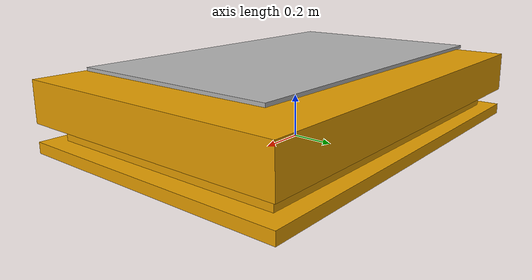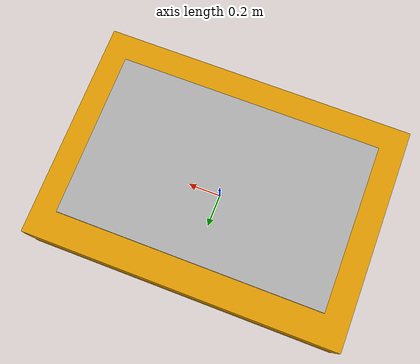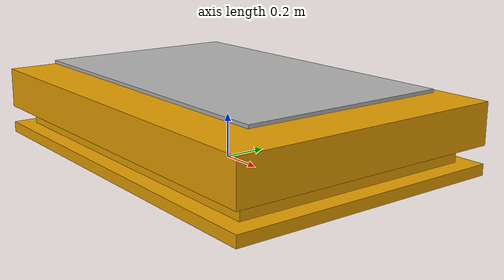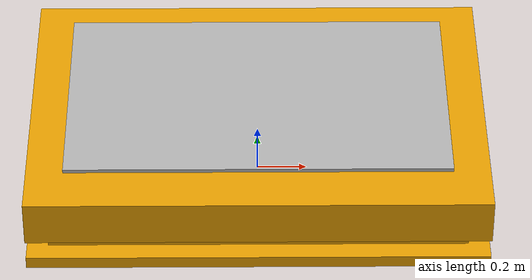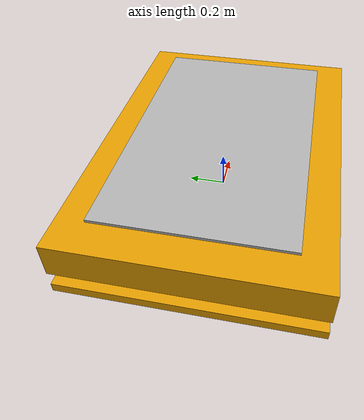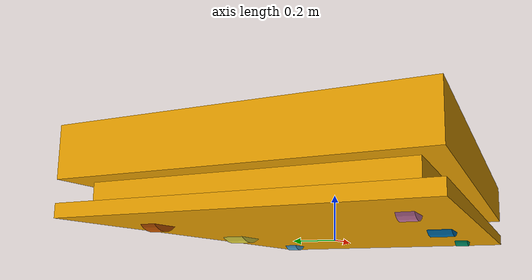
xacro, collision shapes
<?xml version="1.0"?>
<robot xmlns:xacro="http://www.ros.org/wiki/xacro" name="OTTO1500">

  <xacro:property name="base_link_width" value="1.29" />
  <xacro:property name="base_link_length" value="1.83" />
  <xacro:property name="base_link_height" value="0.32" />
  <xacro:property name="base_link_box_height" value=".391179" />

  <xacro:property name="wheel_axis_front" value="0.601175" />
  <xacro:property name="wheel_axis_rear" value="-0.601175" />
  <xacro:property name="wheel_track" value="0.475812" />

  <xacro:property name="wheel_front_rear_radius" value="0.09" />
  <xacro:property name="wheel_front_rear_length" value="0.061434" />
  <xacro:property name="wheel_center_radius" value="0.147" />
  <xacro:property name="wheel_center_length" value="0.1" />

  <xacro:property name="basic_platform_width" value="0.963" />
  <xacro:property name="basic_platform_length" value="1.53" />
  <xacro:property name="basic_platform_height" value="0.015" />
  <xacro:property name="basic_platform_offset" value="0.376" />
  <xacro:property name="basic_platform_collider_offset" value="0.005" />

  <xacro:property name="camera_height" value="0.22" />
  <xacro:property name="camera_center_offset" value="0.51" />

  <xacro:property name="lidar_height" value="0.1" />

  <link name="base_link">
    <inertial>
      <origin xyz="0. 0. 0." />
      <mass value="597" />
      <inertia ixx="88.0222" ixy="0." ixz="0." iyy="174.014" iyz="0." izz="249.778"/>
    </inertial>
    <visual>
      <origin rpy="0. 0. ${pi/2}" xyz="0. 0. 0."/>
      <geometry>
        <mesh filename="../meshes/OTTO1500_bodylink.stl" scale="1.0 1.0 1.0" />
      </geometry>
    </visual>
    <!-- bottom collider box -->
    <collision>
      <origin rpy="0. 0. ${pi/2}" xyz="0. 0. 0.049"/>
      <geometry>
        <box size="${base_link_width} ${base_link_length} 0.05" />
      </geometry>
    </collision>
    <!-- center collider box -->
    <collision>
      <origin rpy="0. 0. ${pi/2}" xyz="0. 0. 0.114"/>
      <geometry>
        <box size="1.135 1.663 0.079" />
      </geometry>
    </collision>
    <!-- top collider box -->
    <collision>
      <origin rpy="0. 0. ${pi/2}" xyz="0. 0. 0.248"/>
      <geometry>
        <box size="${base_link_width} ${base_link_length} 0.187" />
      </geometry>
    </collision>
  </link>

  <!-- Wheel front left -->
  <link name="wheel_FL">
    <inertial>
      <origin xyz="0. 0. 0." />
      <mass value="5" />
      <inertia ixx="0.0116976" ixy="0." ixz="0." iyy="0.02025" iyz="0." izz="0.0116976"/>
    </inertial>
    <visual>
      <origin rpy="0. 0. ${pi/2}" xyz="0. 0. ${-wheel_front_rear_radius}"/>
      <geometry>
        <mesh filename="../meshes/OTTO1500_wheel_front_rear.stl" scale="1.0 1.0 1.0" />
      </geometry>
    </visual>
    <collision>
      <origin rpy="${pi/2} ${pi/2} 0." xyz="0. 0. 0."/>
      <geometry>
        <cylinder radius="${wheel_front_rear_radius}" length="${wheel_front_rear_length}"/>
      </geometry>
    </collision>
  </link>
  <joint name="wheel_FL_joint" type="continuous">
    <parent link="base_link" />
    <child link="wheel_FL" />
    <axis xyz="0. 1. 0." />
    <origin rpy="0. 0. 0." xyz="${wheel_axis_front} ${wheel_track} ${wheel_front_rear_radius}" />
  </joint>

  <link name="wheel_FR">
    <inertial>
      <origin xyz="0. 0. 0." />
      <mass value="5" />
      <inertia ixx="0.0116976" ixy="0." ixz="0." iyy="0.02025" iyz="0." izz="0.0116976"/>
    </inertial>
    <visual>
      <origin rpy="0. 0. ${pi/2}" xyz="0. 0. ${-wheel_front_rear_radius}"/>
      <geometry>
        <mesh filename="../meshes/OTTO1500_wheel_front_rear.stl" scale="1.0 1.0 1.0" />
      </geometry>
    </visual>
    <collision>
      <origin rpy="${pi/2} ${pi/2} 0." xyz="0. 0. 0."/>
      <geometry>
        <cylinder radius="${wheel_front_rear_radius}" length="${wheel_front_rear_length}"/>
      </geometry>
    </collision>
  </link>
  <joint name="wheel_FR_joint" type="continuous">
    <parent link="base_link" />
    <child link="wheel_FR" />
    <axis xyz="0. 1. 0." />
    <origin rpy="0. 0. 0." xyz="${wheel_axis_front} ${-wheel_track} ${wheel_front_rear_radius}" />
  </joint>

  <link name="wheel_CL">
    <inertial>
      <origin xyz="0. 0. 0." />
      <mass value="5" />
      <inertia ixx="0.0311779" ixy="0." ixz="0." iyy="0.0540225" iyz="0." izz="0.0311779"/>
    </inertial>
    <visual>
      <origin rpy="0. 0. ${pi/2}" xyz="0. 0. ${-wheel_center_radius}"/>
      <geometry>
        <mesh filename="../meshes/OTTO1500_wheel_center.stl" scale="1.0 1.0 1.0" />
      </geometry>
    </visual>
    <collision>
      <origin rpy="${pi/2} ${pi/2} 0." xyz="0. 0. 0."/>
      <geometry>
        <cylinder radius="${wheel_center_radius}" length="${wheel_center_length}"/>
      </geometry>
    </collision>
  </link>
  <joint name="wheel_CL_joint" type="continuous">
    <parent link="base_link" />
    <child link="wheel_CL" />
    <axis xyz="0. 1. 0." />
    <origin rpy="0. 0. 0." xyz="0. ${wheel_track} ${wheel_center_radius}" />
  </joint>

  <link name="wheel_CR">
    <inertial>
      <origin xyz="0. 0. 0." />
      <mass value="5" />
      <inertia ixx="0.0311779" ixy="0." ixz="0." iyy="0.0540225" iyz="0." izz="0.0311779"/>
    </inertial>
    <visual>
      <origin rpy="0. 0. ${pi/2}" xyz="0. 0. ${-wheel_center_radius}"/>
      <geometry>
        <mesh filename="../meshes/OTTO1500_wheel_center.stl" scale="1.0 1.0 1.0" />
      </geometry>
    </visual>
    <collision>
      <origin rpy="${pi/2} ${pi/2} 0." xyz="0. 0. 0."/>
      <geometry>
        <cylinder radius="${wheel_center_radius}" length="${wheel_center_length}"/>
      </geometry>
    </collision>
  </link>
  <joint name="wheel_CR_joint" type="continuous">
    <parent link="base_link" />
    <child link="wheel_CR" />
    <axis xyz="0. 1. 0." />
    <origin rpy="0. 0. 0." xyz="0. ${-wheel_track} ${wheel_center_radius}" />
  </joint>

  <link name="wheel_RL">
    <inertial>
      <origin xyz="0. 0. 0." />
      <mass value="5" />
      <inertia ixx="0.0116976" ixy="0." ixz="0." iyy="0.02025" iyz="0." izz="0.0116976"/>
    </inertial>
    <visual>
      <origin rpy="0. 0. ${pi/2}" xyz="0. 0. ${-wheel_front_rear_radius}"/>
      <geometry>
        <mesh filename="../meshes/OTTO1500_wheel_front_rear.stl" scale="1.0 1.0 1.0" />
      </geometry>
    </visual>
    <collision>
      <origin rpy="${pi/2} ${pi/2} 0." xyz="0. 0. 0."/>
      <geometry>
        <cylinder radius="${wheel_front_rear_radius}" length="${wheel_front_rear_length}"/>
      </geometry>
    </collision>
  </link>
  <joint name="wheel_RL_joint" type="continuous">
    <parent link="base_link" />
    <child link="wheel_RL" />
    <axis xyz="0. 1. 0." />
    <origin rpy="0. 0. 0." xyz="${wheel_axis_rear} ${wheel_track} ${wheel_front_rear_radius}" />
  </joint>

  <link name="wheel_RR">
    <inertial>
      <origin xyz="0. 0. 0." />
      <mass value="5" />
      <inertia ixx="0.0116976" ixy="0." ixz="0." iyy="0.02025" iyz="0." izz="0.0116976"/>
    </inertial>
    <visual>
      <origin rpy="0. 0. ${pi/2}" xyz="0. 0. ${-wheel_front_rear_radius}"/>
      <geometry>
        <mesh filename="../meshes/OTTO1500_wheel_front_rear.stl" scale="1.0 1.0 1.0" />
      </geometry>
    </visual>
    <collision>
      <origin rpy="${pi/2} ${pi/2} 0." xyz="0. 0. 0."/>
      <geometry>
        <cylinder radius="${wheel_front_rear_radius}" length="${wheel_front_rear_length}"/>
      </geometry>
    </collision>
  </link>
  <joint name="wheel_RR_joint" type="continuous">
    <parent link="base_link" />
    <child link="wheel_RR" />
    <axis xyz="0. 1. 0." />
    <origin rpy="0. 0. 0." xyz="${wheel_axis_rear} ${-wheel_track} ${wheel_front_rear_radius}" />
  </joint>

  <link name="basic_platform">
    <inertial>
      <origin xyz="0. 0. 0." />
      <mass value="15" />
      <inertia ixx="1.15949" ixy="0." ixz="0." iyy="2.92641" iyz="0." izz="4.08534"/>
    </inertial>
    <visual>
      <origin rpy="0. 0. ${pi/2}" xyz="0. 0. ${basic_platform_offset}"/>
      <geometry>
        <mesh filename="../meshes/Platform_A.stl" scale="1.0 1.0 1.0" />
      </geometry>
    </visual>
    <collision>=
      <origin rpy="0. 0. ${pi/2}" xyz="0. 0. ${basic_platform_offset + basic_platform_collider_offset}"/>
      <geometry>
        <box size="${basic_platform_width} ${basic_platform_length} ${basic_platform_height}" />
      </geometry>
    </collision>
  </link>
  <joint name="platform_base_joint" type="fixed">
    <parent link="base_link" />
    <child link="basic_platform" />
    <origin rpy="0. 0. 0." xyz="0. 0. 0." />
  </joint>

  <link name="lidar_F" />
  <joint name="lidar_F_joint" type="fixed">
    <parent link="base_link" />
    <child link="lidar_F" />
    <origin rpy="0. 0. 0." xyz="${base_link_length * 0.47} ${base_link_width * 0.47} ${lidar_height}" />
  </joint>

  <link name="lidar_R" />
  <joint name="lidar_R_joint" type="fixed">
    <parent link="base_link" />
    <child link="lidar_R" />
    <origin rpy="0. 0. 0." xyz="${-base_link_length * 0.47} ${-base_link_width * 0.47} ${lidar_height}" />
  </joint>

  <link name="camera_FL" />
  <joint name="camera_FL_joint" type="fixed">
    <parent link="base_link" />
    <child link="camera_FL" />
    <origin rpy="0. 0. 0." xyz="${base_link_length / 2} ${camera_center_offset} ${camera_height}" />
  </joint>

  <link name="camera_FR" />
  <joint name="camera_FR_joint" type="fixed">
    <parent link="base_link" />
    <child link="camera_FR" />
    <origin rpy="0. 0. 0." xyz="${base_link_length / 2} ${-camera_center_offset} ${camera_height}" />
  </joint>

  <link name="camera_RL" />
  <joint name="camera_RL_joint" type="fixed">
    <parent link="base_link" />
    <child link="camera_RL" />
    <origin rpy="0. 0. 0." xyz="${-base_link_length / 2} ${camera_center_offset} ${camera_height}" />
  </joint>

  <link name="camera_RR" />
  <joint name="camera_RR_joint" type="fixed">
    <parent link="base_link" />
    <child link="camera_RR" />
    <origin rpy="0. 0. 0." xyz="${-base_link_length / 2} ${-camera_center_offset} ${camera_height}" />
  </joint>

</robot>
